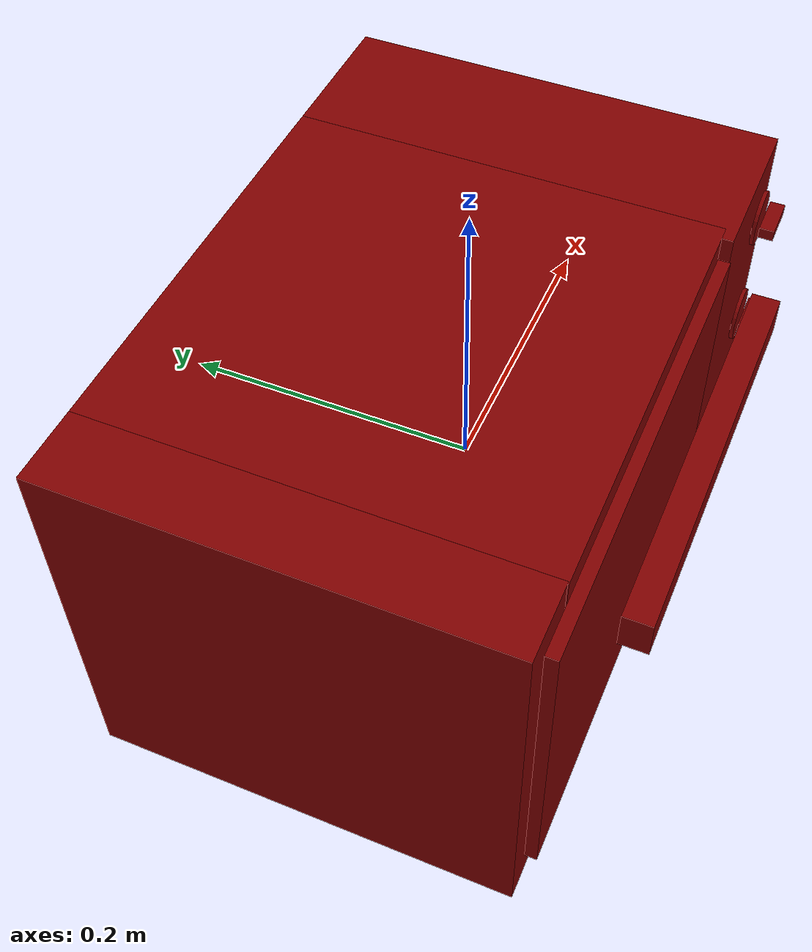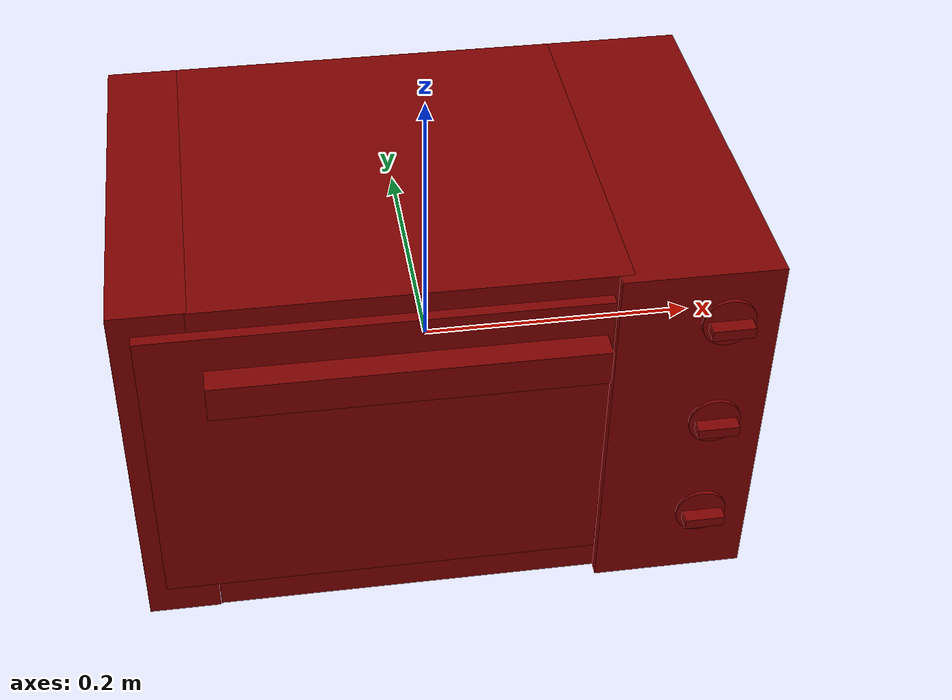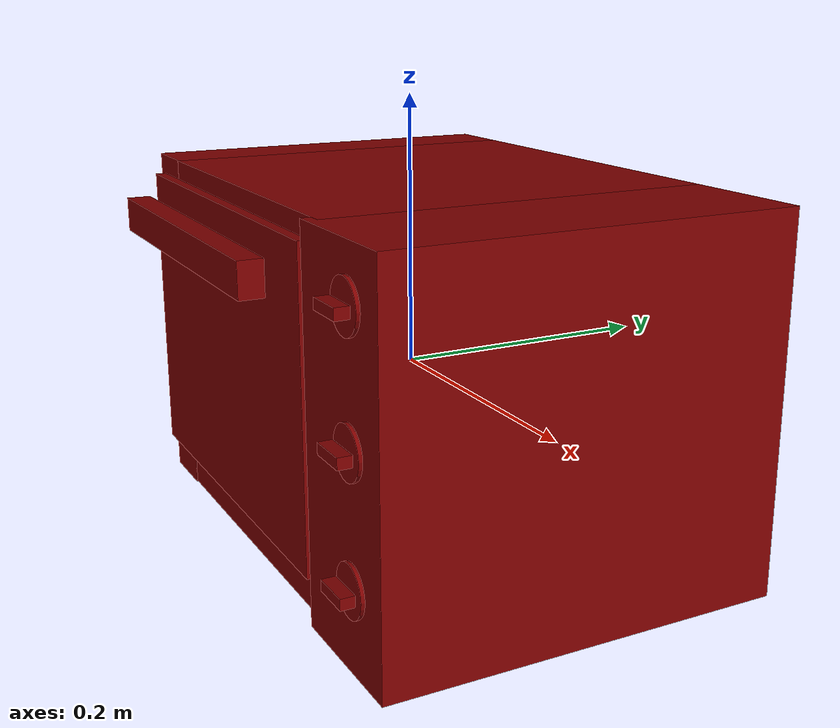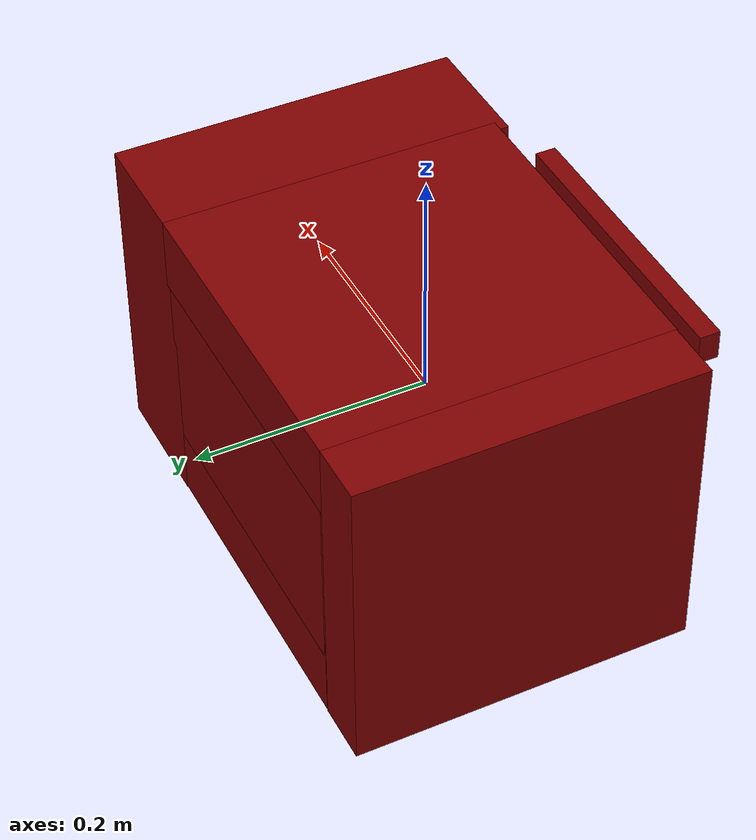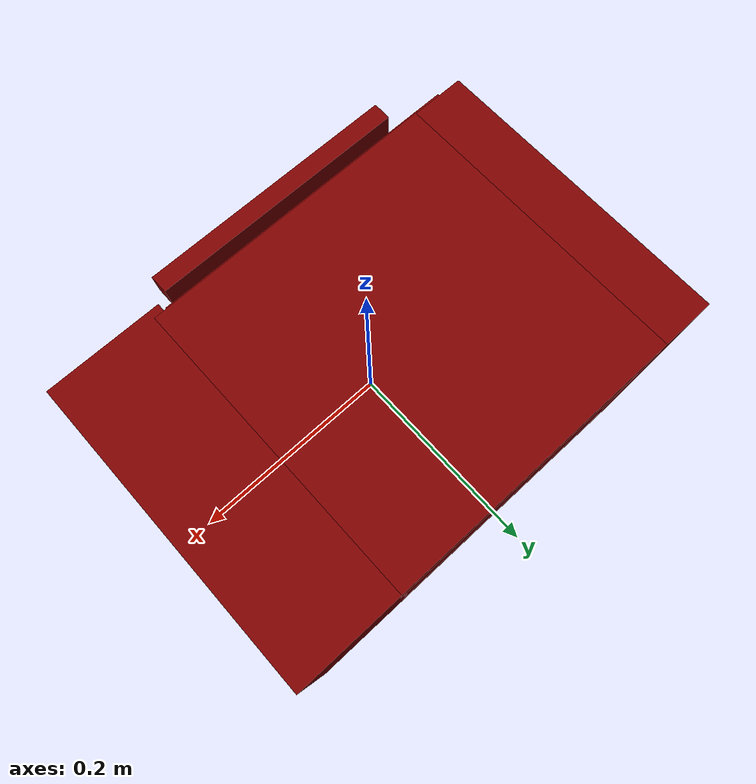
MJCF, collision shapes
<?xml version='1.0' encoding='UTF-8'?>
<mujoco model="model">
  <option timestep="0.002" gravity="0.0 0.0 -9.81"/>
  <compiler angle="radian"/>
  <asset>
    <mesh file="visuals/door.obj" name="door_vis"/>
    <mesh file="visuals/knob_function.obj" name="knob_function_vis"/>
    <mesh file="visuals/knob_temp.obj" name="knob_temp_vis"/>
    <mesh file="visuals/knob_time.obj" name="knob_time_vis"/>
    <mesh file="visuals/rack0.obj" name="rack0_vis"/>
    <mesh file="visuals/Body001.obj" name="Body001_vis"/>
    <mesh file="visuals/window.obj" name="window_vis"/>
    <texture file="visuals/T_BC001.png" name="Body001_material" type="2d"/>
    <material name="Body001_material" rgba="1 1 1 1.0" texture="Body001_material" shininess="0.1" specular="2"/>
    <texture file="visuals/T_BC001.png" name="door_material" type="2d"/>
    <material name="door_material" rgba="1 1 1 1.0" texture="door_material" shininess="0.1" specular="2"/>
    <material name="window_material" rgba="0.0277181938290596 0.0277181938290596 0.0277181938290596 0.8405797481536865" shininess="0.5" specular="0.3103448502657381"/>
    <texture file="visuals/T_BC001.png" name="knob_function_material" type="2d"/>
    <material name="knob_function_material" rgba="1 1 1 1.0" texture="knob_function_material" shininess="0.4472135901451111" specular="0.3103448502657381"/>
    <texture file="visuals/T_BC001.png" name="knob_temp_material" type="2d"/>
    <material name="knob_temp_material" rgba="1 1 1 1.0" texture="knob_temp_material" shininess="0.4472135901451111" specular="0.3103448502657381"/>
    <texture file="visuals/T_BC001.png" name="knob_time_material" type="2d"/>
    <material name="knob_time_material" rgba="1 1 1 1.0" texture="knob_time_material" shininess="0.4472135901451111" specular="0.3103448502657381"/>
    <texture file="visuals/T_BC001.png" name="rack0_material" type="2d"/>
    <material name="rack0_material" rgba="1 1 1 1.0" texture="rack0_material" shininess="0.1" specular="4"/>
  </asset>
  <default>
    <default class="visual">
      <geom conaffinity="0" contype="0" group="1" type="mesh"/>
    </default>
    <default class="collision">
      <geom group="0" rgba="0.5 0 0 0.5"/>
    </default>
    <default class="spawn">
      <geom group="0" rgba="1 1 1 0.5" contype="0" conaffinity="0"/>
      <site group="0" rgba="1 1 1 0.5"/>
    </default>
    <default class="region">
      <geom group="1" conaffinity="0" contype="0" rgba="0 1 0 0"/>
    </default>
  </default>
  <worldbody>
    <body>
      <body name="object">
        <geom mesh="Body001_vis" type="mesh" solimp="0.998 0.998 0.001" solref="0.001 1" friction="0.95 0.3 0.1" class="visual" material="Body001_material"/>
        <geom class="collision" type="box" pos="-0.1932327300310135 0.02288559451699257 -3.4779077395796776e-09" size="0.025627143681049347 0.14587104320526123 0.13856211304664612" quat="1.0 0.0 0.0 0.0"/>
        <geom class="collision" type="box" pos="0.16453298926353455 0.018775392323732376 -5.052570486441255e-07" size="0.05482609570026398 0.14998102188110352 0.13856159150600433" quat="1.0 0.0 0.0 0.0"/>
        <geom class="collision" type="box" pos="-0.02491343580186367 0.022534426301717758 0.1072198823094368" size="0.14444921910762787 0.14622199535369873 0.0313420295715332" quat="1.0 0.0 0.0 0.0"/>
        <geom class="collision" type="box" pos="0.0003365774464327842 0.022949397563934326 -0.10035176575183868" size="0.1671508103609085 0.14580687880516052 0.036813754588365555" quat="1.0 0.0 0.0 0.0"/>
        <geom class="collision" type="box" pos="-0.025512469932436943 0.12081779539585114 0.026276038959622383" size="0.13975845277309418 0.04793861508369446 0.10450322926044464" quat="1.0 0.0 0.0 0.0"/>
        <body name="door">
          <joint axis="1.0 0.0 0.0" pos="-0.028417732566595078 -0.13167354464530945 -0.10996166616678238" limited="true" name="door_joint" range="0.0 1.4707963267948966" type="hinge" damping="1" frictionloss="1" armature=".01" stiffness="1" springref="-0.2"/>
          <geom mesh="door_vis" type="mesh" solimp="0.998 0.998 0.001" solref="0.001 1" friction="0.95 0.3 0.1" class="visual" material="door_material"/>
          <geom class="collision" type="box" pos="-0.048778727650642395 -0.12832607328891754 0.009270405396819115" size="0.155429407954216 0.004069883842021227 0.11464034765958786" quat="1.0 0.0 0.0 0.0" name="door_main"/>
          <geom class="collision" type="box" pos="-0.03162335604429245 -0.15936046838760376 0.10049789398908615" size="0.1286497712135315 0.008927845396101475 0.012739742174744606" quat="1.0 0.0 0.0 0.0" name="door_handle_main"/>
          <body name="window">
            <geom mesh="window_vis" type="mesh" solimp="0.998 0.998 0.001" solref="0.001 1" friction="0.95 0.3 0.1" class="visual" material="window_material"/>
            <geom class="collision" type="box" pos="-0.03457213565707207 -0.12823157012462616 0.008148572407662868" size="0.13766318559646606 0.002244075294584036 0.07341572642326355" quat="1.0 0.0 0.0 0.0"/>
          </body>
        </body>
        <body name="knob_function">
          <joint axis="0.0 1.0 0.0" pos="0.18314199149608612 -0.13746300339698792 0.1004600003361702" limited="true" name="knob_function_joint" range="0.0 4.71238898038469" type="hinge" damping="0.05" armature="1" frictionloss="0.75"/>
          <geom mesh="knob_function_vis" type="mesh" solimp="0.998 0.998 0.001" solref="0.001 1" friction="0.95 0.3 0.1" class="visual" material="knob_function_material"/>
          <geom class="collision" type="cylinder" pos="0.18318775296211243 -0.13458037376403809 0.10054536908864975" size="0.018340058624744415 0.0013244657311588526" quat="0.7071067094802856 0.70710688829422 0.0 0.0" friction="100 0.5 0.01"/>
          <geom class="collision" type="box" pos="0.18303245306015015 -0.1427181214094162 0.10052616149187088" size="0.014441070146858692 0.004999999888241291 0.003946957178413868" quat="1.0 0.0 0.0 0.0" name="knob_function_main" friction="100 0.5 0.01"/>
        </body>
        <body name="knob_temp">
          <joint axis="0.0 1.0 0.0" pos="0.18314199149608612 -0.13746300339698792 0.011767973192036152" limited="true" name="knob_temp_joint" range="0.0 4.71238898038469" type="hinge" damping="0.05" armature="1" frictionloss="0.75"/>
          <geom mesh="knob_temp_vis" type="mesh" solimp="0.998 0.998 0.001" solref="0.001 1" friction="0.95 0.3 0.1" class="visual" material="knob_temp_material"/>
          <geom class="collision" type="cylinder" pos="0.18318775296211243 -0.13458037376403809 0.011917922645807266" size="0.018340058624744415 0.0013244657311588526" quat="0.7071067094802856 0.70710688829422 0.0 0.0" friction="100 0.5 0.01"/>
          <geom class="collision" type="box" pos="0.18303245306015015 -0.1427181214094162 0.012073136866092682" size="0.014441070146858692 0.004999999888241291 0.003946957178413868" quat="1.0 0.0 0.0 0.0" name="knob_temp_main" friction="100 0.5 0.01"/>
        </body>
        <body name="knob_time">
          <joint axis="0.0 1.0 0.0" pos="0.18314199149608612 -0.13746300339698792 -0.07738630473613739" limited="true" name="knob_time_joint" range="0.0 4.71238898038469" type="hinge" damping="0.05" armature="1" frictionloss="0.75"/>
          <geom mesh="knob_time_vis" type="mesh" solimp="0.998 0.998 0.001" solref="0.001 1" friction="0.95 0.3 0.1" class="visual" material="knob_time_material"/>
          <geom class="collision" type="cylinder" pos="0.18318775296211243 -0.13458037376403809 -0.07745812088251114" size="0.018340058624744415 0.0013244657311588526" quat="0.7071067094802856 0.70710688829422 0.0 0.0" friction="100 0.5 0.01"/>
          <geom class="collision" type="box" pos="0.18303245306015015 -0.1427181214094162 -0.07725442945957184" size="0.014441070146858692 0.004999999888241291 0.003946957178413868" quat="1.0 0.0 0.0 0.0" name="knob_time_main" friction="100 0.5 0.01"/>
        </body>
        <body name="rack0">
          <geom class="region" name="reg_rack0" type="box" pos="-0.028542410582304 -0.03244515508413315 0.03984741121530533" size="0.13479982486367226 0.0804123262166977 0.03289346939325333"/>
          <joint axis="0.0 -1.0 0.0" pos="-0.028300438076257706 -0.030278440564870834 0.007739551365375519" limited="true" name="rack0_joint" range="0.0 0.16" type="slide" damping="1" frictionloss="1" armature=".01" stiffness="0.05"/>
          <geom mesh="rack0_vis" type="mesh" solimp="0.998 0.998 0.001" solref="0.001 1" friction="0.95 0.3 0.1" class="visual" material="rack0_material"/>
          <geom class="collision" type="box" pos="-0.026292653754353523 -0.028424791991710663 0.003924924414604902" size="0.13305118680000305 0.07599309086799622 0.004028920084238052" quat="1.0 0.0 0.0 0.0"/>
        </body>
        <geom class="region" name="reg_int" type="box" pos="-0.028542410582304 -0.024341121315956116 0.007827352732419968" size="0.13479982486367226 0.09901772236824036 0.06491353532671928"/>
        <geom class="region" name="reg_main" type="box" pos="3.725290298461914e-09 0.018390312790870667 0.0" size="0.22035908496379852 0.1513661423921585 0.1395619342327118"/>
      </body>
    </body>
  </worldbody>
  <actuator>
    <motor name="door_joint_actuator" joint="door_joint" gear="20"/>
    <motor name="knob_function_joint_actuator" joint="knob_function_joint" gear="5"/>
    <motor name="knob_temp_joint_actuator" joint="knob_temp_joint" gear="5"/>
    <motor name="knob_time_joint_actuator" joint="knob_time_joint" gear="5"/>
    <motor name="rack0_joint_actuator" joint="rack0_joint" gear="20"/>
  </actuator>
</mujoco>
